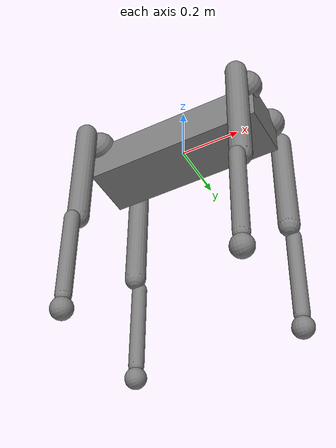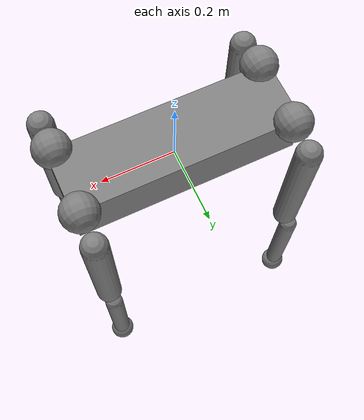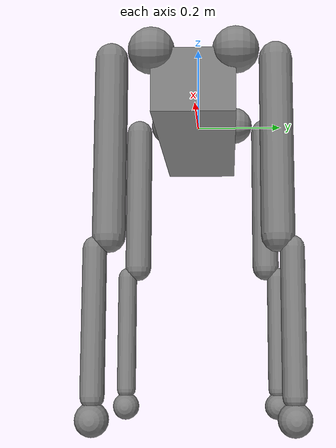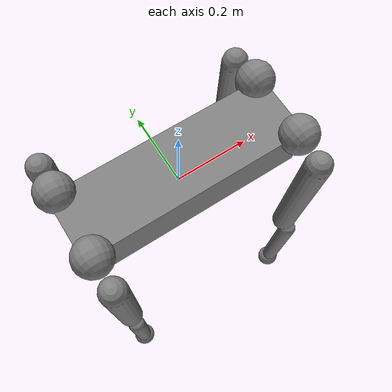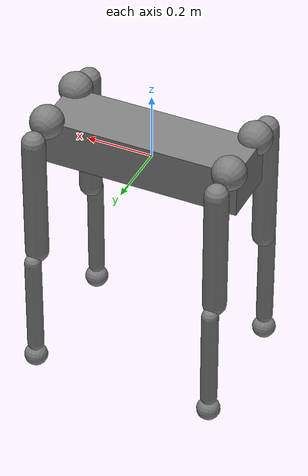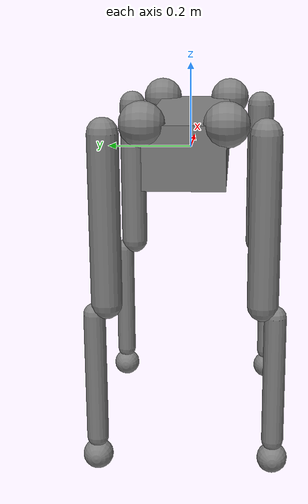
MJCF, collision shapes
<?xml version='1.0' encoding='utf-8'?>
<mujoco model="quadruped_robot">
  <compiler angle="radian" meshdir="../meshes" autolimits="true" balanceinertia="true" fusestatic="false" />
  <option timestep="0.005" integrator="implicitfast" cone="elliptic" impratio="100" />
  <default>
    <default class="collision">
      <geom group="3" contype="1" conaffinity="1" friction="0.8 0.02 0.01" margin="0.001" />
    </default>
  </default>
  <asset>
    <mesh name="base_link" content_type="model/stl" file="base_link.stl" />
    <mesh name="leg_joint" content_type="model/stl" file="leg_joint.stl" />
    <mesh name="left_thigh" content_type="model/stl" file="left_thigh.stl" />
    <mesh name="right_thigh" content_type="model/stl" file="right_thigh.stl" />
    <mesh name="shin" content_type="model/stl" file="shin.stl" />
    <mesh name="foot" content_type="model/stl" file="foot.stl" />
  </asset>
  <worldbody>
    <body name="trunk">
      <inertial pos="-0.1 0 0.09" quat="-0.0111942 0.705368 -0.00744327 0.708713" mass="9.7" diaginertia="0.430029 0.399988 0.0749829" />
      <joint name="floating_base" type="free" />
      <geom type="mesh" contype="0" conaffinity="0" group="2" density="0" mesh="base_link" />
      <geom type="mesh" mesh="base_link" contype="0" conaffinity="0" group="2" density="0" />
      <body name="RL_hip" pos="-0.277 0.06 0.089405" quat="0.5 0.5 0.5 -0.5">
        <inertial pos="0 0 -0.038" mass="1.16" diaginertia="0.002 0.002 0.001" />
        <joint name="RL_hip_joint" pos="0 0 0" axis="0 -1 0" range="-0.9 0.9" actuatorfrcrange="-45 45" damping="3.0" frictionloss="0.1" armature="0.01" />
        <geom type="mesh" contype="0" conaffinity="0" group="2" density="0" mesh="leg_joint" />
        <geom type="mesh" mesh="leg_joint" contype="0" conaffinity="0" group="2" density="0" />
        <body name="RL_thigh" pos="0 0 -0.114" quat="0.707107 0.707107 0 0">
          <inertial pos="0.17 -0.028 0.014" mass="1.24" diaginertia="0.002 0.002 0.001" />
          <joint name="RL_thigh_joint" pos="0 0 0" axis="0 1 0" range="-1.8 1.5" actuatorfrcrange="-45 45" damping="3.0" frictionloss="0.1" armature="0.01" />
          <geom type="mesh" contype="0" conaffinity="0" group="2" density="0" mesh="left_thigh" />
          <geom type="mesh" mesh="left_thigh" contype="0" conaffinity="0" group="2" density="0" />
          <body name="RL_calf" pos="0.426 -0.0285 0" quat="-4.32051e-08 0 1 0">
            <inertial pos="-0.158 0.011 0" quat="0.514758 0.507531 0.49315 0.483984" mass="0.66" diaginertia="0.0290588 0.0290001 0.000241165" />
            <joint name="RL_calf_joint" pos="0 0 0" axis="0 1 0" range="0.4 2.7" actuatorfrcrange="-45 45" damping="3.0" frictionloss="0.1" armature="0.01" />
            <geom type="mesh" contype="0" conaffinity="0" group="2" density="0" mesh="shin" />
            <geom type="mesh" mesh="shin" contype="0" conaffinity="0" group="2" density="0" />
            <body name="RL_foot" pos="-0.345 0 0">
              <inertial pos="0 0 0" mass="0.015" diaginertia="1.349e-06 1.349e-06 1.349e-06" />
              <geom type="mesh" contype="0" conaffinity="0" group="2" density="0" mesh="foot" />
              <geom type="mesh" mesh="foot" contype="0" conaffinity="0" group="2" density="0" />
              <geom class="collision" name="RL_foot_col" type="sphere" size="0.035" priority="1" friction="1.0 0.02 0.01" condim="3" solimp="0.015 1 0.031" />
              <site name="RL_foot_site" size="0.02" group="5" />
            </body>
            <geom class="collision" name="RL_calf_col" type="capsule" size="0.025" fromto="0 0 0 -0.30 0 0" />
          </body>
          <geom class="collision" name="RL_thigh_col" type="capsule" size="0.035" fromto="0.02 0 0 0.40 0 0" />
        </body>
        <geom class="collision" name="RL_hip_col" type="sphere" size="0.05" pos="0 0 -0.03" />
      </body>
      <body name="RR_hip" pos="-0.277 -0.06 0.089405" quat="0.5 -0.5 -0.5 -0.5">
        <inertial pos="0 0 -0.038" mass="1.16" diaginertia="0.002 0.002 0.001" />
        <joint name="RR_hip_joint" pos="0 0 0" axis="0 1 0" range="-0.9 0.9" actuatorfrcrange="-45 45" damping="3.0" frictionloss="0.1" armature="0.01" />
        <geom type="mesh" contype="0" conaffinity="0" group="2" density="0" mesh="leg_joint" />
        <geom type="mesh" mesh="leg_joint" contype="0" conaffinity="0" group="2" density="0" />
        <body name="RR_thigh" pos="0 0 -0.114" quat="-3.05506e-08 -3.05506e-08 0.707107 0.707107">
          <inertial pos="0.17 -0.028 -0.014" mass="1.24" diaginertia="0.002 0.002 0.001" />
          <joint name="RR_thigh_joint" pos="0 0 0" axis="0 -1 0" range="-1.8 1.5" actuatorfrcrange="-45 45" damping="3.0" frictionloss="0.1" armature="0.01" />
          <geom type="mesh" contype="0" conaffinity="0" group="2" density="0" mesh="right_thigh" />
          <geom type="mesh" mesh="right_thigh" contype="0" conaffinity="0" group="2" density="0" />
          <body name="RR_calf" pos="0.426 -0.0285 0" quat="0 -4.32051e-08 -4.32051e-08 -1">
            <inertial pos="-0.158 0.011 0" quat="0.514758 0.507531 0.49315 0.483984" mass="0.66" diaginertia="0.0290588 0.0290001 0.000241165" />
            <joint name="RR_calf_joint" pos="0 0 0" axis="0 1 0" range="0.4 2.7" actuatorfrcrange="-45 45" damping="3.0" frictionloss="0.1" armature="0.01" />
            <geom type="mesh" contype="0" conaffinity="0" group="2" density="0" mesh="shin" />
            <geom type="mesh" mesh="shin" contype="0" conaffinity="0" group="2" density="0" />
            <body name="RR_foot" pos="-0.345 0 0">
              <inertial pos="0 0 0" mass="0.015" diaginertia="1.349e-06 1.349e-06 1.349e-06" />
              <geom type="mesh" contype="0" conaffinity="0" group="2" density="0" mesh="foot" />
              <geom type="mesh" mesh="foot" contype="0" conaffinity="0" group="2" density="0" />
              <geom class="collision" name="RR_foot_col" type="sphere" size="0.035" priority="1" friction="1.0 0.02 0.01" condim="3" solimp="0.015 1 0.031" />
              <site name="RR_foot_site" size="0.02" group="5" />
            </body>
            <geom class="collision" name="RR_calf_col" type="capsule" size="0.025" fromto="0 0 0 -0.30 0 0" />
          </body>
          <geom class="collision" name="RR_thigh_col" type="capsule" size="0.035" fromto="0.02 0 0 0.40 0 0" />
        </body>
        <geom class="collision" name="RR_hip_col" type="sphere" size="0.05" pos="0 0 -0.03" />
      </body>
      <body name="FL_hip" pos="0.282 0.06 0.090255" quat="0.5 0.5 0.5 -0.5">
        <inertial pos="0 0 -0.038" mass="1.16" diaginertia="0.002 0.002 0.001" />
        <joint name="FL_hip_joint" pos="0 0 0" axis="0 -1 0" range="-0.9 0.9" actuatorfrcrange="-45 45" damping="3.0" frictionloss="0.1" armature="0.01" />
        <geom type="mesh" contype="0" conaffinity="0" group="2" density="0" mesh="leg_joint" />
        <geom type="mesh" mesh="leg_joint" contype="0" conaffinity="0" group="2" density="0" />
        <body name="FL_thigh" pos="0 0 -0.114" quat="0.707107 0.707107 0 0">
          <inertial pos="0.17 -0.028 0.014" mass="1.24" diaginertia="0.002 0.002 0.001" />
          <joint name="FL_thigh_joint" pos="0 0 0" axis="0 1 0" range="-1.8 1.5" actuatorfrcrange="-45 45" damping="3.0" frictionloss="0.1" armature="0.01" />
          <geom type="mesh" contype="0" conaffinity="0" group="2" density="0" mesh="left_thigh" />
          <geom type="mesh" mesh="left_thigh" contype="0" conaffinity="0" group="2" density="0" />
          <body name="FL_calf" pos="0.426 -0.0285 0" quat="-4.32051e-08 0 1 0">
            <inertial pos="-0.158 0.011 0" quat="0.514758 0.507531 0.49315 0.483984" mass="0.66" diaginertia="0.0290588 0.0290001 0.000241165" />
            <joint name="FL_calf_joint" pos="0 0 0" axis="0 1 0" range="0.4 2.7" actuatorfrcrange="-45 45" damping="3.0" frictionloss="0.1" armature="0.01" />
            <geom type="mesh" contype="0" conaffinity="0" group="2" density="0" mesh="shin" />
            <geom type="mesh" mesh="shin" contype="0" conaffinity="0" group="2" density="0" />
            <body name="FL_foot" pos="-0.345 0 0">
              <inertial pos="0 0 0" mass="0.015" diaginertia="1.349e-06 1.349e-06 1.349e-06" />
              <geom type="mesh" contype="0" conaffinity="0" group="2" density="0" mesh="foot" />
              <geom type="mesh" mesh="foot" contype="0" conaffinity="0" group="2" density="0" />
              <geom class="collision" name="FL_foot_col" type="sphere" size="0.035" priority="1" friction="1.0 0.02 0.01" condim="3" solimp="0.015 1 0.031" />
              <site name="FL_foot_site" size="0.02" group="5" />
            </body>
            <geom class="collision" name="FL_calf_col" type="capsule" size="0.025" fromto="0 0 0 -0.30 0 0" />
          </body>
          <geom class="collision" name="FL_thigh_col" type="capsule" size="0.035" fromto="0.02 0 0 0.40 0 0" />
        </body>
        <geom class="collision" name="FL_hip_col" type="sphere" size="0.05" pos="0 0 -0.03" />
      </body>
      <body name="FR_hip" pos="0.282 -0.06 0.090255" quat="0.5 -0.5 -0.5 -0.5">
        <inertial pos="0 0 -0.038" mass="1.16" diaginertia="0.002 0.002 0.001" />
        <joint name="FR_hip_joint" pos="0 0 0" axis="0 1 0" range="-0.9 0.9" actuatorfrcrange="-45 45" damping="3.0" frictionloss="0.1" armature="0.01" />
        <geom type="mesh" contype="0" conaffinity="0" group="2" density="0" mesh="leg_joint" />
        <geom type="mesh" mesh="leg_joint" contype="0" conaffinity="0" group="2" density="0" />
        <body name="FR_thigh" pos="0 0 -0.114" quat="-3.05506e-08 -3.05506e-08 0.707107 0.707107">
          <inertial pos="0.17 -0.028 -0.014" mass="1.24" diaginertia="0.002 0.002 0.001" />
          <joint name="FR_thigh_joint" pos="0 0 0" axis="0 -1 0" range="-1.8 1.5" actuatorfrcrange="-45 45" damping="3.0" frictionloss="0.1" armature="0.01" />
          <geom type="mesh" contype="0" conaffinity="0" group="2" density="0" mesh="right_thigh" />
          <geom type="mesh" mesh="right_thigh" contype="0" conaffinity="0" group="2" density="0" />
          <body name="FR_calf" pos="0.426 -0.0285 0" quat="0 -4.32051e-08 -4.32051e-08 -1">
            <inertial pos="-0.158 0.011 0" quat="0.514758 0.507531 0.49315 0.483984" mass="0.66" diaginertia="0.0290588 0.0290001 0.000241165" />
            <joint name="FR_calf_joint" pos="0 0 0" axis="0 1 0" range="0.4 2.7" actuatorfrcrange="-45 45" damping="3.0" frictionloss="0.1" armature="0.01" />
            <geom type="mesh" contype="0" conaffinity="0" group="2" density="0" mesh="shin" />
            <geom type="mesh" mesh="shin" contype="0" conaffinity="0" group="2" density="0" />
            <body name="FR_foot" pos="-0.345 0 0">
              <inertial pos="0 0 0" mass="0.015" diaginertia="1.349e-06 1.349e-06 1.349e-06" />
              <geom type="mesh" contype="0" conaffinity="0" group="2" density="0" mesh="foot" />
              <geom type="mesh" mesh="foot" contype="0" conaffinity="0" group="2" density="0" />
              <geom class="collision" name="FR_foot_col" type="sphere" size="0.035" priority="1" friction="1.0 0.02 0.01" condim="3" solimp="0.015 1 0.031" />
              <site name="FR_foot_site" size="0.02" group="5" />
            </body>
            <geom class="collision" name="FR_calf_col" type="capsule" size="0.025" fromto="0 0 0 -0.30 0 0" />
          </body>
          <geom class="collision" name="FR_thigh_col" type="capsule" size="0.035" fromto="0.02 0 0 0.40 0 0" />
        </body>
        <geom class="collision" name="FR_hip_col" type="sphere" size="0.05" pos="0 0 -0.03" />
      </body>
      <geom class="collision" name="trunk_col" type="box" size="0.30 0.09 0.07" pos="0 0 0.02" />
      <site name="imu" pos="0 0 0" size="0.02" group="5" />
      <camera name="track" mode="trackcom" pos="1.36 -1.19 0.96" xyaxes="1 1.2 0 -0.36 0.30 0.88" />
    </body>
  </worldbody>
  <actuator>
    <position name="FL_hip_joint" joint="FL_hip_joint" kp="100.0" kv="3.0" forcerange="-45.0 45.0" ctrlrange="-0.9 0.9" />
    <position name="FL_thigh_joint" joint="FL_thigh_joint" kp="100.0" kv="3.0" forcerange="-45.0 45.0" ctrlrange="-1.8 1.5" />
    <position name="FL_calf_joint" joint="FL_calf_joint" kp="100.0" kv="3.0" forcerange="-45.0 45.0" ctrlrange="0.4 2.7" />
    <position name="FR_hip_joint" joint="FR_hip_joint" kp="100.0" kv="3.0" forcerange="-45.0 45.0" ctrlrange="-0.9 0.9" />
    <position name="FR_thigh_joint" joint="FR_thigh_joint" kp="100.0" kv="3.0" forcerange="-45.0 45.0" ctrlrange="-1.8 1.5" />
    <position name="FR_calf_joint" joint="FR_calf_joint" kp="100.0" kv="3.0" forcerange="-45.0 45.0" ctrlrange="0.4 2.7" />
    <position name="RL_hip_joint" joint="RL_hip_joint" kp="100.0" kv="3.0" forcerange="-45.0 45.0" ctrlrange="-0.9 0.9" />
    <position name="RL_thigh_joint" joint="RL_thigh_joint" kp="100.0" kv="3.0" forcerange="-45.0 45.0" ctrlrange="-1.8 1.5" />
    <position name="RL_calf_joint" joint="RL_calf_joint" kp="100.0" kv="3.0" forcerange="-45.0 45.0" ctrlrange="0.4 2.7" />
    <position name="RR_hip_joint" joint="RR_hip_joint" kp="100.0" kv="3.0" forcerange="-45.0 45.0" ctrlrange="-0.9 0.9" />
    <position name="RR_thigh_joint" joint="RR_thigh_joint" kp="100.0" kv="3.0" forcerange="-45.0 45.0" ctrlrange="-1.8 1.5" />
    <position name="RR_calf_joint" joint="RR_calf_joint" kp="100.0" kv="3.0" forcerange="-45.0 45.0" ctrlrange="0.4 2.7" />
  </actuator>
  <sensor>
    <velocimeter name="base_linvel" site="imu" />
    <gyro name="base_angvel" site="imu" />
  </sensor>
  <keyframe>
    <key name="home" qpos="0.000000 0.000000 0.648387 1.000000 0.000000 0.000000 0.000000 0.080000 -0.500000 0.900000 0.080000 -0.500000 0.900000 0.080000 -0.500000 0.900000 0.080000 -0.500000 0.900000" ctrl="0.080000 -0.500000 0.900000 0.080000 -0.500000 0.900000 0.080000 -0.500000 0.900000 0.080000 -0.500000 0.900000" />
  </keyframe>
</mujoco>
